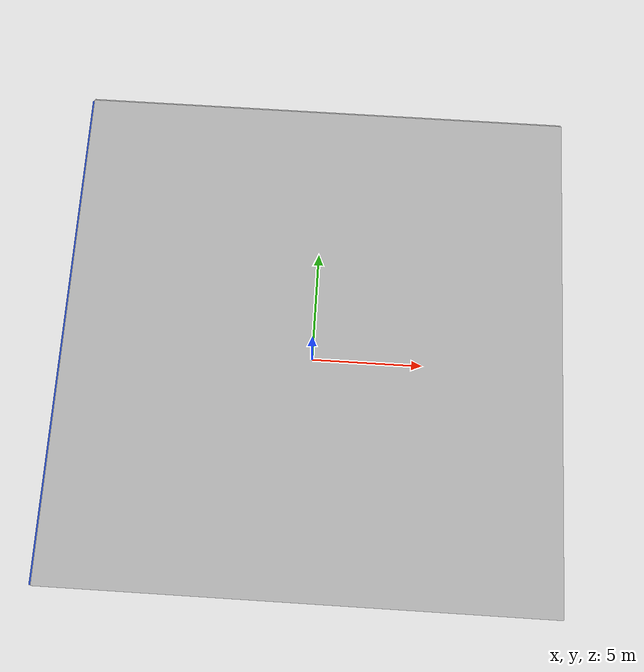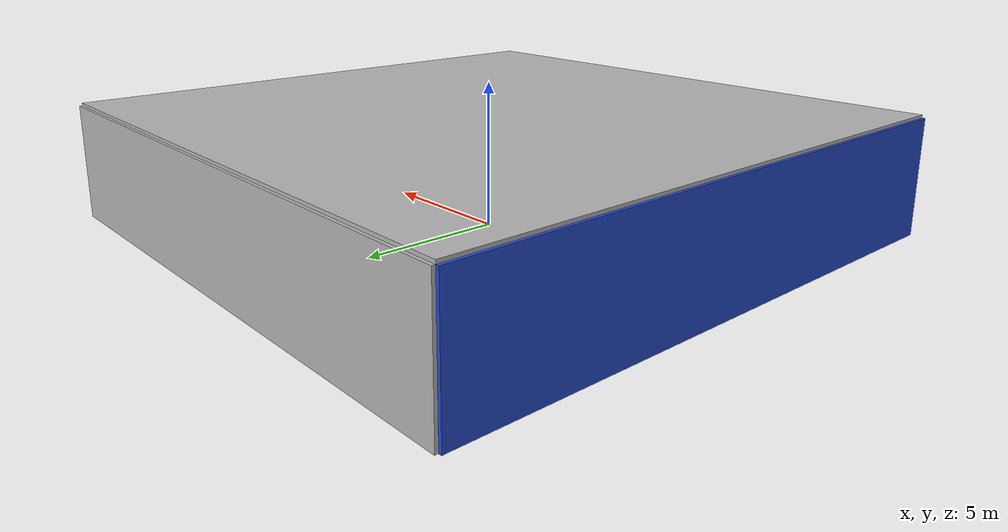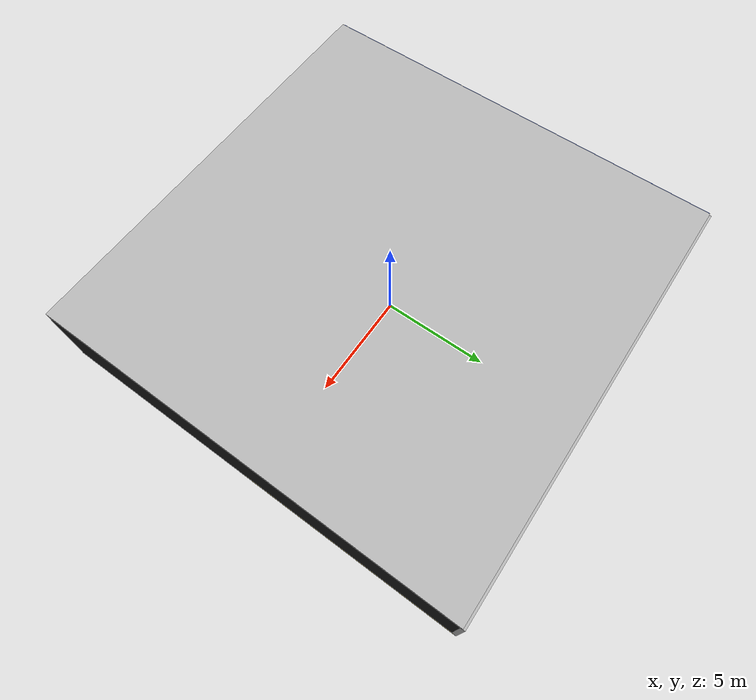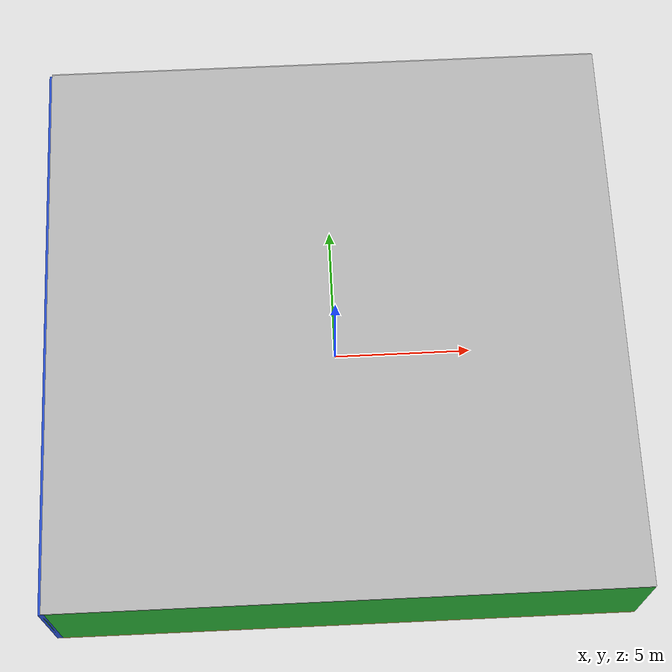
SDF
<sdf version="1.4">
 <world name="default">
  <physics type="ode">
   <max_step_size>0.001</max_step_size>
   <real_time_factor>1</real_time_factor>
   <real_time_update_rate>1000</real_time_update_rate>
   <gravity>0 0 -9.8</gravity>
  </physics>
  <scene><ambient>0.4 0.4 0.4 1</ambient><background>0.7 0.7 0.7 1</background><shadows>1</shadows></scene>
  <model name="Surrounding">
   <static>1</static>
   <link name="Ceiling">
    <collision name="Ceiling_Collision"><geometry><box><size>20 20 0.1</size></box></geometry></collision>
    <visual name="Ceiling_Visual">
     <geometry><box><size>20 20 0.1</size></box></geometry>
     <material>
      <script><uri>file://media/materials/scripts/gazebo.material</uri><name>Gazebo/LightOn</name></script>
     </material>
    </visual>
    <pose>0 0 4.05 0 0 0</pose>
   </link>
   <link name="Wall_South">
    <collision name="Wall_South_Collision">
     <geometry><box><size>20 0 4</size></box></geometry>
     <pose>0 0 2 0 -0 0</pose>
    </collision>
    <visual name="Wall_South_Visual">
     <pose>0 0 2 0 -0 0</pose>
     <geometry><box><size>20 0 4</size></box></geometry>
     <material>
      <script><uri>file://media/materials/scripts/gazebo.material</uri><name>Gazebo/Green</name></script>
     </material>
    </visual>
    <velocity_decay><linear>0</linear><angular>0</angular></velocity_decay>
    <pose>0 -10 0 0 -0 0</pose>
   </link>
   <link name="Wall_East">
    <collision name="Wall_21_Collision">
     <geometry><box><size>20 0 4</size></box></geometry>
     <pose>0 0 2 0 -0 0</pose>
    </collision>
    <visual name="Wall_21_Visual">
     <pose>0 0 2 0 -0 0</pose>
     <geometry><box><size>20 0 4</size></box></geometry>
     <material>
      <script><uri>file://media/materials/scripts/gazebo.material</uri><name>Gazebo/Black</name></script>
     </material>
    </visual>
    <velocity_decay><linear>0</linear><angular>0</angular></velocity_decay>
    <pose>10 0 0 0 -0 1.5708</pose>
   </link>
   <link name="Wall_North">
    <collision name="Wall_22_Collision">
     <geometry><box><size>20 0.2 4</size></box></geometry>
     <pose>0 0 2 0 -0 0</pose>
    </collision>
    <visual name="Wall_22_Visual">
     <pose>0 0 2 0 -0 0</pose>
     <geometry><box><size>20 0.2 4</size></box></geometry>
     <material>
      <script><uri>file://media/materials/scripts/gazebo.material</uri><name>Gazebo/JointAnchor</name></script>
     </material>
    </visual>
    <velocity_decay><linear>0</linear><angular>0</angular></velocity_decay>
    <pose>0 10 0 0 -0 0</pose>
   </link>
   <link name="Wall_West">
    <collision name="Wall_23_Collision">
     <geometry><box><size>20 0.2 4</size></box></geometry>
     <pose>0 0 2 0 -0 0</pose>
    </collision>
    <visual name="Wall_23_Visual">
     <pose>0 0 2 0 -0 0</pose>
     <geometry><box><size>20 0.2 4</size></box></geometry>
     <material>
      <script><uri>file://media/materials/scripts/gazebo.material</uri><name>Gazebo/BlueGlow</name></script>
     </material>
    </visual>
    <velocity_decay><linear>0</linear><angular>0</angular></velocity_decay>
    <pose>-10 0 0 0 0 -1.5708</pose>
   </link>
   <link name="Ground_link">
    <collision name="collision">
     <pose>0 0 .05 0 -0 0</pose>
     <geometry><box><size>20 20 0.1</size></box></geometry>
    </collision>
    <visual name="visual">
     <pose>0 0 .05 0 -0 0</pose>
     <geometry><box><size>20 20 0.1</size></box></geometry>
     <material>
      <script><uri>file://media/materials/scripts/gazebo.material</uri><name>Gazebo/ZincYellow</name></script>
     </material>
    </visual>
   </link>
   <static>1</static>
  </model>
  <spherical_coordinates>
   <surface_model>EARTH_WGS84</surface_model>
   <latitude_deg>0</latitude_deg>
   <longitude_deg>0</longitude_deg>
   <elevation>0</elevation>
   <heading_deg>0</heading_deg>
  </spherical_coordinates>
  <light name="lightball_0" type="diffuse">
   <diffuse>0.8 0.8 0.8 1</diffuse>
   <specular>0.2 0.2 0.2 1</specular>
   <attenuation>
    <range>100</range>
    <constant>0.7</constant>
    <linear>0.01</linear>
    <quadratic>0.001</quadratic>
   </attenuation>
   <direction>-0.5 0.1 -0.9</direction>
   <pose>6.07566076092 -0.841204548528 2.50481896239 0 0 0</pose>
  </light>
  <include><uri>model://table</uri><pose>-4.27090706284 -1.57166924175 0 0 0 0.519395776618</pose></include>
  <include><uri>model://cabinet</uri><pose>-4.92300158985 6.71635796754 0 0 0 0.969123676391</pose></include>
  <include><uri>model://cabinet</uri><pose>-1.49395092039 -6.96748155986 0 0 0 1.63287410596</pose></include>
  <include><uri>model://table</uri><pose>-1.41204371141 -4.05780188657 0 0 0 0.488558765223</pose></include>
  <include><uri>model://cabinet</uri><pose>1.57461385798 -5.24877696255 0 0 0 2.4494481323</pose></include>
  <include><uri>model://table</uri><pose>4.70271950885 5.21465832147 0 0 0 2.09670884297</pose></include>
  <include>
   <uri>model://construction_cone</uri>
   <pose>7.60622785998 -2.22540855907 0 0 0 1.90571732647</pose>
  </include>
 </world>
</sdf>

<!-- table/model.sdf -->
<sdf version="1.5">
  <model name="table">
    <static>true</static>
    <link name="link">
      <collision name="surface">
        <pose>0 0 1.0 0 0 0</pose>
        <geometry>
          <box>
            <size>1.5 0.8 0.03</size>
          </box>
        </geometry>
        <surface>
          <friction>
            <ode>
              <mu>0.6</mu>
              <mu2>0.6</mu2>
            </ode>
          </friction>
        </surface>
      </collision>
      <visual name="visual1">
        <pose>0 0 1.0 0 0 0</pose>
        <geometry>
          <box>
            <size>1.5 0.8 0.03</size>
          </box>
        </geometry>
        <material>
          <script>
            <uri>model://media/materials/scripts/gazebo.material</uri>
            <name>Gazebo/Wood</name>
          </script>
        </material>
      </visual>
      <collision name="front_left_leg">
        <pose>0.68 0.38 0.5 0 0 0</pose>
        <geometry>
          <cylinder>
            <radius>0.02</radius>
            <length>1.0</length>
          </cylinder>
        </geometry>
      </collision>
      <visual name="front_left_leg">
        <pose>0.68 0.38 0.5 0 0 0</pose>
        <geometry>
          <cylinder>
            <radius>0.02</radius>
            <length>1.0</length>
          </cylinder>
        </geometry>
        <material>
          <script>
            <uri>model://media/materials/scripts/gazebo.material</uri>
            <name>Gazebo/Grey</name>
          </script>
        </material>
      </visual>
      <collision name="front_right_leg">
        <pose>0.68 -0.38 0.5 0 0 0</pose>
        <geometry>
          <cylinder>
            <radius>0.02</radius>
            <length>1.0</length>
          </cylinder>
        </geometry>
      </collision>
      <visual name="front_right_leg">
        <pose>0.68 -0.38 0.5 0 0 0</pose>
        <geometry>
          <cylinder>
            <radius>0.02</radius>
            <length>1.0</length>
          </cylinder>
        </geometry>
        <material>
          <script>
            <uri>model://media/materials/scripts/gazebo.material</uri>
            <name>Gazebo/Grey</name>
          </script>
        </material>
      </visual>
      <collision name="back_right_leg">
        <pose>-0.68 -0.38 0.5 0 0 0</pose>
        <geometry>
          <cylinder>
            <radius>0.02</radius>
            <length>1.0</length>
          </cylinder>
        </geometry>
      </collision>
      <visual name="back_right_leg">
        <pose>-0.68 -0.38 0.5 0 0 0</pose>
        <geometry>
          <cylinder>
            <radius>0.02</radius>
            <length>1.0</length>
          </cylinder>
        </geometry>
        <material>
          <script>
            <uri>model://media/materials/scripts/gazebo.material</uri>
            <name>Gazebo/Grey</name>
          </script>
        </material>
      </visual>
      <collision name="back_left_leg">
        <pose>-0.68 0.38 0.5 0 0 0</pose>
        <geometry>
          <cylinder>
            <radius>0.02</radius>
            <length>1.0</length>
          </cylinder>
        </geometry>
      </collision>
      <visual name="back_left_leg">
        <pose>-0.68 0.38 0.5 0 0 0</pose>
        <geometry>
          <cylinder>
            <radius>0.02</radius>
            <length>1.0</length>
          </cylinder>
        </geometry>
        <material>
          <script>
            <uri>model://media/materials/scripts/gazebo.material</uri>
            <name>Gazebo/Grey</name>
          </script>
        </material>
      </visual>
    </link>
  </model>
</sdf>

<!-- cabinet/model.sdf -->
<sdf version="1.5">
  <model name="cabinet">
    <static>true</static>
    <link name="cabinet_bottom_plate">
      <inertial>
        <pose>0 0 -1 0 0 0</pose>
        <inertia>
          <ixx>2.050000</ixx>
          <ixy>0</ixy>
          <ixz>0</ixz>
          <iyy>2.050000</iyy>
          <iyz>0</iyz>
          <izz>2.050000</izz>
        </inertia>
        <mass>25.000000</mass>
      </inertial>
      <collision name="cabinet_bottom_plate_geom">
        <pose>0 0 0.010000 0 0 0</pose>
        <geometry>
          <box>
            <size>0.450000 0.450000 0.020000</size>
          </box>
        </geometry>
      </collision>
      <visual name="cabinet_bottom_plate_geom_visual">
        <pose>0 0 0.010000 0 0 0</pose>
        <geometry>
          <box>
            <size>0.450000 0.450000 0.020000</size>
          </box>
        </geometry>
        <material>
          <script>
            <uri>model://media/materials/scripts/gazebo.material</uri>
            <name>Gazebo/Wood</name>
          </script>
        </material>
      </visual>
      <collision name="cabinet_bottom_plate_geom_cabinet_back_plate">
        <pose>0.235000 0 0.510000 0 0 0</pose>
        <geometry>
          <box>
            <size>0.020000 0.450000 1.020000</size>
          </box>
        </geometry>
      </collision>
      <visual name="cabinet_bottom_plate_geom_cabinet_back_plate_visual">
        <pose>0.235000 0 0.510000 0 0 0</pose>
        <geometry>
          <box>
            <size>0.020000 0.450000 1.020000</size>
          </box>
        </geometry>
        <material>
          <script>
            <uri>model://media/materials/scripts/gazebo.material</uri>
            <name>Gazebo/Wood</name>
          </script>
        </material>
      </visual>
      <collision name="cabinet_bottom_plate_geom_cabinet_left_plate">
        <pose>0 0.235000 0.510000 0 0 0</pose>
        <geometry>
          <box>
            <size>0.450000 0.020000 1.020000</size>
          </box>
        </geometry>
      </collision>
      <visual name="cabinet_bottom_plate_geom_cabinet_left_plate_visual">
        <pose>0 0.235000 0.510000 0 0 0</pose>
        <geometry>
          <box>
            <size>0.450000 0.020000 1.020000</size>
          </box>
        </geometry>
        <material>
          <script>
            <uri>model://media/materials/scripts/gazebo.material</uri>
            <name>Gazebo/Wood</name>
          </script>
        </material>
      </visual>
      <collision name="cabinet_bottom_plate_geom_cabinet_middle_plate">
        <pose>0 0 0.510000 0 0 0</pose>
        <geometry>
          <box>
            <size>0.450000 0.450000 0.020000</size>
          </box>
        </geometry>
      </collision>
      <visual name="cabinet_bottom_plate_geom_cabinet_middle_plate_visual">
        <pose>0 0 0.510000 0 0 0</pose>
        <geometry>
          <box>
            <size>0.450000 0.450000 0.020000</size>
          </box>
        </geometry>
        <material>
          <script>
            <uri>model://media/materials/scripts/gazebo.material</uri>
            <name>Gazebo/Wood</name>
          </script>
        </material>
      </visual>
      <collision name="cabinet_bottom_plate_geom_cabinet_right_plate">
        <pose>0 -0.235000 0.510000 0 0 0</pose>
        <geometry>
          <box>
            <size>0.450000 0.020000 1.020000</size>
          </box>
        </geometry>
      </collision>
      <visual name="cabinet_bottom_plate_geom_cabinet_right_plate_visual">
        <pose>0 -0.235000 0.510000 0 0 0</pose>
        <geometry>
          <box>
            <size>0.450000 0.020000 1.020000</size>
          </box>
        </geometry>
        <material>
          <script>
            <uri>model://media/materials/scripts/gazebo.material</uri>
            <name>Gazebo/Wood</name>
          </script>
        </material>
      </visual>
      <collision name="cabinet_bottom_plate_geom_cabinet_top_plate">
        <pose>0 0 1.010000 0 0 0</pose>
        <geometry>
          <box>
            <size>0.450000 0.450000 0.020000</size>
          </box>
        </geometry>
      </collision>
      <visual name="cabinet_bottom_plate_geom_cabinet_top_plate_visual">
        <pose>0 0 1.010000 0 0 0</pose>
        <geometry>
          <box>
            <size>0.450000 0.450000 0.020000</size>
          </box>
        </geometry>
        <material>
          <script>
            <uri>model://media/materials/scripts/gazebo.material</uri>
            <name>Gazebo/Wood</name>
          </script>
        </material>
      </visual>
    </link>
  </model>
</sdf>

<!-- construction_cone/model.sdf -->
<sdf version="1.5">
  <model name="Construction Cone">
    <link name="link">
      <collision name="collision">
        <geometry>
          <mesh>
            <scale>10 10 10</scale>
            <uri>file://isr-testbed/construction_cone/meshes/construction_cone.dae</uri>
          </mesh>
        </geometry>
      </collision>
      <visual name="visual">
        <geometry>
          <mesh>
            <scale>10 10 10</scale>
            <uri>file://isr-testbed/construction_cone/meshes/construction_cone.dae</uri>
          </mesh>
        </geometry>
      </visual>
    </link>
  </model>
</sdf>
